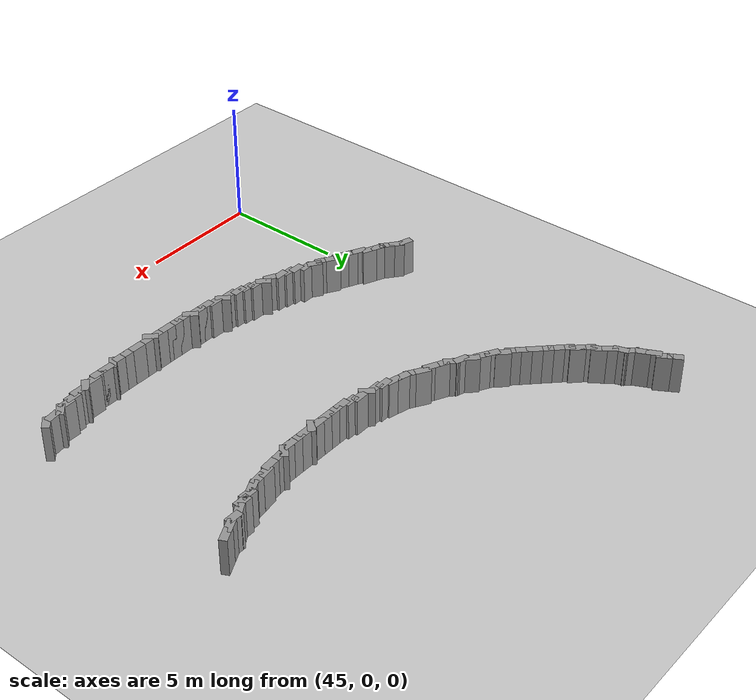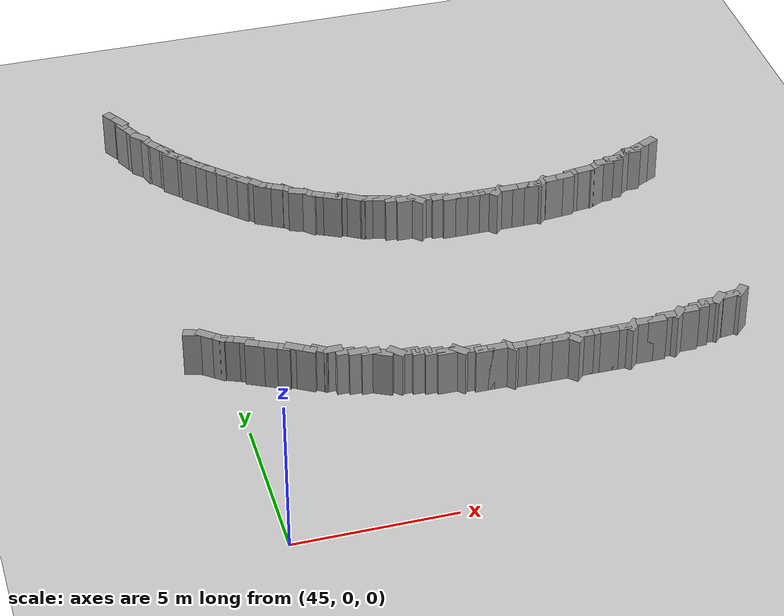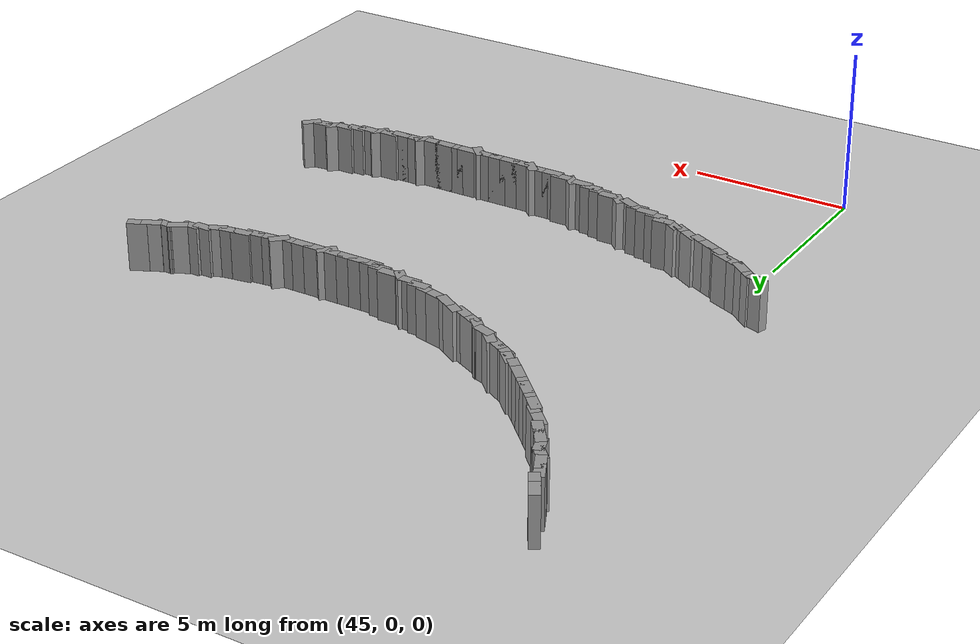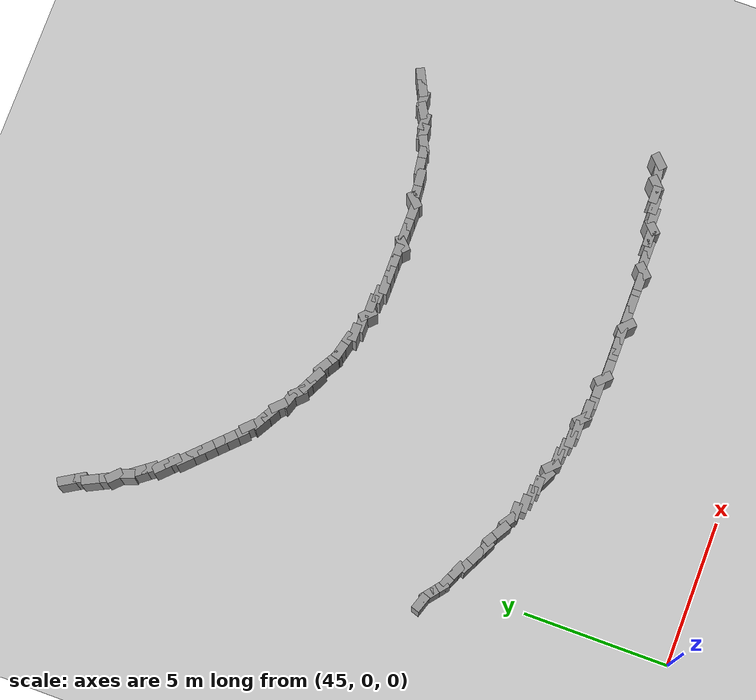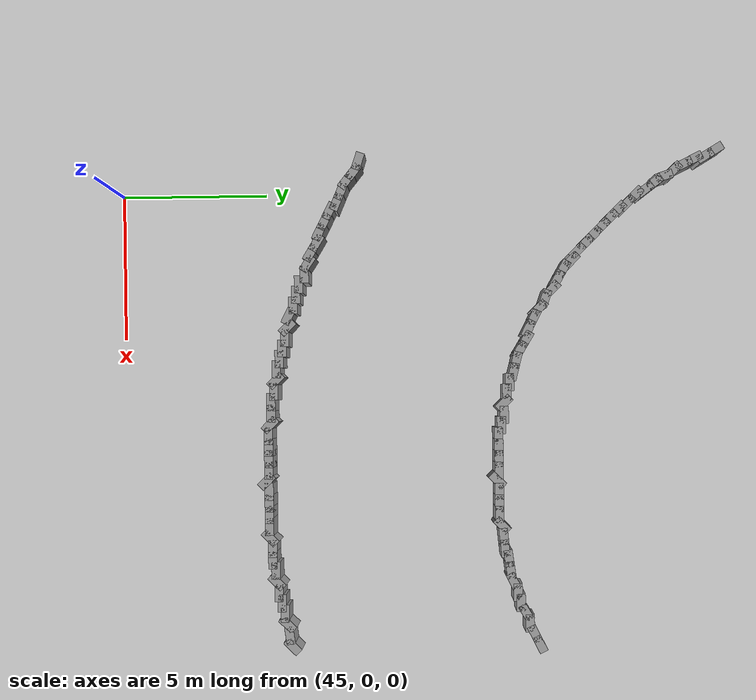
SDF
<sdf version="1.5">
 <world name="test_figure8">
  <include><uri>model://sun</uri></include>
  <include><uri>model://ground_plane</uri></include>
  <model name="curbL_149">
   <static>true</static>
   <pose>44.031 8.290 0.750 0 0 -0.322</pose>
   <link name="link">
    <collision name="collision"><geometry><box><size>0.600 0.300 1.500</size></box></geometry></collision>
    <visual name="visual">
     <geometry><box><size>0.600 0.300 1.500</size></box></geometry>
     <material><ambient>0.6 0.6 0.6 1</ambient><diffuse>0.6 0.6 0.6 1</diffuse></material>
    </visual>
   </link>
  </model>
  <model name="curbL_150">
   <static>true</static>
   <pose>44.391 8.127 0.750 0 0 -0.675</pose>
   <link name="link">
    <collision name="collision"><geometry><box><size>0.600 0.300 1.500</size></box></geometry></collision>
    <visual name="visual">
     <geometry><box><size>0.600 0.300 1.500</size></box></geometry>
     <material><ambient>0.6 0.6 0.6 1</ambient><diffuse>0.6 0.6 0.6 1</diffuse></material>
    </visual>
   </link>
  </model>
  <model name="curbL_151">
   <static>true</static>
   <pose>44.703 7.878 0.750 0 0 -0.675</pose>
   <link name="link">
    <collision name="collision"><geometry><box><size>0.600 0.300 1.500</size></box></geometry></collision>
    <visual name="visual">
     <geometry><box><size>0.600 0.300 1.500</size></box></geometry>
     <material><ambient>0.6 0.6 0.6 1</ambient><diffuse>0.6 0.6 0.6 1</diffuse></material>
    </visual>
   </link>
  </model>
  <model name="curbL_152">
   <static>true</static>
   <pose>45.053 7.691 0.750 0 0 -0.405</pose>
   <link name="link">
    <collision name="collision"><geometry><box><size>0.600 0.300 1.500</size></box></geometry></collision>
    <visual name="visual">
     <geometry><box><size>0.600 0.300 1.500</size></box></geometry>
     <material><ambient>0.6 0.6 0.6 1</ambient><diffuse>0.6 0.6 0.6 1</diffuse></material>
    </visual>
   </link>
  </model>
  <model name="curbL_153">
   <static>true</static>
   <pose>45.421 7.534 0.750 0 0 -0.405</pose>
   <link name="link">
    <collision name="collision"><geometry><box><size>0.600 0.300 1.500</size></box></geometry></collision>
    <visual name="visual">
     <geometry><box><size>0.600 0.300 1.500</size></box></geometry>
     <material><ambient>0.6 0.6 0.6 1</ambient><diffuse>0.6 0.6 0.6 1</diffuse></material>
    </visual>
   </link>
  </model>
  <model name="curbL_154">
   <static>true</static>
   <pose>45.728 7.286 0.750 0 0 -0.464</pose>
   <link name="link">
    <collision name="collision"><geometry><box><size>0.600 0.300 1.500</size></box></geometry></collision>
    <visual name="visual">
     <geometry><box><size>0.600 0.300 1.500</size></box></geometry>
     <material><ambient>0.6 0.6 0.6 1</ambient><diffuse>0.6 0.6 0.6 1</diffuse></material>
    </visual>
   </link>
  </model>
  <model name="curbL_155">
   <static>true</static>
   <pose>46.086 7.107 0.750 0 0 -0.464</pose>
   <link name="link">
    <collision name="collision"><geometry><box><size>0.600 0.300 1.500</size></box></geometry></collision>
    <visual name="visual">
     <geometry><box><size>0.600 0.300 1.500</size></box></geometry>
     <material><ambient>0.6 0.6 0.6 1</ambient><diffuse>0.6 0.6 0.6 1</diffuse></material>
    </visual>
   </link>
  </model>
  <model name="curbL_156">
   <static>true</static>
   <pose>46.444 6.928 0.750 0 0 -0.464</pose>
   <link name="link">
    <collision name="collision"><geometry><box><size>0.600 0.300 1.500</size></box></geometry></collision>
    <visual name="visual">
     <geometry><box><size>0.600 0.300 1.500</size></box></geometry>
     <material><ambient>0.6 0.6 0.6 1</ambient><diffuse>0.6 0.6 0.6 1</diffuse></material>
    </visual>
   </link>
  </model>
  <model name="curbL_157">
   <static>true</static>
   <pose>46.817 6.830 0.750 0 0 -0.540</pose>
   <link name="link">
    <collision name="collision"><geometry><box><size>0.600 0.300 1.500</size></box></geometry></collision>
    <visual name="visual">
     <geometry><box><size>0.600 0.300 1.500</size></box></geometry>
     <material><ambient>0.6 0.6 0.6 1</ambient><diffuse>0.6 0.6 0.6 1</diffuse></material>
    </visual>
   </link>
  </model>
  <model name="curbL_158">
   <static>true</static>
   <pose>47.160 6.624 0.750 0 0 -0.540</pose>
   <link name="link">
    <collision name="collision"><geometry><box><size>0.600 0.300 1.500</size></box></geometry></collision>
    <visual name="visual">
     <geometry><box><size>0.600 0.300 1.500</size></box></geometry>
     <material><ambient>0.6 0.6 0.6 1</ambient><diffuse>0.6 0.6 0.6 1</diffuse></material>
    </visual>
   </link>
  </model>
  <model name="curbL_159">
   <static>true</static>
   <pose>47.528 6.515 0.750 0 0 -0.588</pose>
   <link name="link">
    <collision name="collision"><geometry><box><size>0.600 0.300 1.500</size></box></geometry></collision>
    <visual name="visual">
     <geometry><box><size>0.600 0.300 1.500</size></box></geometry>
     <material><ambient>0.6 0.6 0.6 1</ambient><diffuse>0.6 0.6 0.6 1</diffuse></material>
    </visual>
   </link>
  </model>
  <model name="curbL_160">
   <static>true</static>
   <pose>47.893 6.400 0.750 0 0 0.000</pose>
   <link name="link">
    <collision name="collision"><geometry><box><size>0.600 0.300 1.500</size></box></geometry></collision>
    <visual name="visual">
     <geometry><box><size>0.600 0.300 1.500</size></box></geometry>
     <material><ambient>0.6 0.6 0.6 1</ambient><diffuse>0.6 0.6 0.6 1</diffuse></material>
    </visual>
   </link>
  </model>
  <model name="curbL_161">
   <static>true</static>
   <pose>48.233 6.200 0.750 0 0 0.000</pose>
   <link name="link">
    <collision name="collision"><geometry><box><size>0.600 0.300 1.500</size></box></geometry></collision>
    <visual name="visual">
     <geometry><box><size>0.600 0.300 1.500</size></box></geometry>
     <material><ambient>0.6 0.6 0.6 1</ambient><diffuse>0.6 0.6 0.6 1</diffuse></material>
    </visual>
   </link>
  </model>
  <model name="curbL_162">
   <static>true</static>
   <pose>48.591 6.100 0.750 0 0 0.000</pose>
   <link name="link">
    <collision name="collision"><geometry><box><size>0.600 0.300 1.500</size></box></geometry></collision>
    <visual name="visual">
     <geometry><box><size>0.600 0.300 1.500</size></box></geometry>
     <material><ambient>0.6 0.6 0.6 1</ambient><diffuse>0.6 0.6 0.6 1</diffuse></material>
    </visual>
   </link>
  </model>
  <model name="curbL_163">
   <static>true</static>
   <pose>48.950 6.000 0.750 0 0 0.000</pose>
   <link name="link">
    <collision name="collision"><geometry><box><size>0.600 0.300 1.500</size></box></geometry></collision>
    <visual name="visual">
     <geometry><box><size>0.600 0.300 1.500</size></box></geometry>
     <material><ambient>0.6 0.6 0.6 1</ambient><diffuse>0.6 0.6 0.6 1</diffuse></material>
    </visual>
   </link>
  </model>
  <model name="curbL_164">
   <static>true</static>
   <pose>49.313 5.844 0.750 0 0 -0.464</pose>
   <link name="link">
    <collision name="collision"><geometry><box><size>0.600 0.300 1.500</size></box></geometry></collision>
    <visual name="visual">
     <geometry><box><size>0.600 0.300 1.500</size></box></geometry>
     <material><ambient>0.6 0.6 0.6 1</ambient><diffuse>0.6 0.6 0.6 1</diffuse></material>
    </visual>
   </link>
  </model>
  <model name="curbL_165">
   <static>true</static>
   <pose>49.702 5.798 0.750 0 0 -0.785</pose>
   <link name="link">
    <collision name="collision"><geometry><box><size>0.600 0.300 1.500</size></box></geometry></collision>
    <visual name="visual">
     <geometry><box><size>0.600 0.300 1.500</size></box></geometry>
     <material><ambient>0.6 0.6 0.6 1</ambient><diffuse>0.6 0.6 0.6 1</diffuse></material>
    </visual>
   </link>
  </model>
  <model name="curbL_166">
   <static>true</static>
   <pose>50.061 5.700 0.750 0 0 0.000</pose>
   <link name="link">
    <collision name="collision"><geometry><box><size>0.600 0.300 1.500</size></box></geometry></collision>
    <visual name="visual">
     <geometry><box><size>0.600 0.300 1.500</size></box></geometry>
     <material><ambient>0.6 0.6 0.6 1</ambient><diffuse>0.6 0.6 0.6 1</diffuse></material>
    </visual>
   </link>
  </model>
  <model name="curbL_167">
   <static>true</static>
   <pose>50.420 5.600 0.750 0 0 0.000</pose>
   <link name="link">
    <collision name="collision"><geometry><box><size>0.600 0.300 1.500</size></box></geometry></collision>
    <visual name="visual">
     <geometry><box><size>0.600 0.300 1.500</size></box></geometry>
     <material><ambient>0.6 0.6 0.6 1</ambient><diffuse>0.6 0.6 0.6 1</diffuse></material>
    </visual>
   </link>
  </model>
  <model name="curbL_168">
   <static>true</static>
   <pose>50.778 5.500 0.750 0 0 0.000</pose>
   <link name="link">
    <collision name="collision"><geometry><box><size>0.600 0.300 1.500</size></box></geometry></collision>
    <visual name="visual">
     <geometry><box><size>0.600 0.300 1.500</size></box></geometry>
     <material><ambient>0.6 0.6 0.6 1</ambient><diffuse>0.6 0.6 0.6 1</diffuse></material>
    </visual>
   </link>
  </model>
  <model name="curbL_169">
   <static>true</static>
   <pose>51.137 5.400 0.750 0 0 0.000</pose>
   <link name="link">
    <collision name="collision"><geometry><box><size>0.600 0.300 1.500</size></box></geometry></collision>
    <visual name="visual">
     <geometry><box><size>0.600 0.300 1.500</size></box></geometry>
     <material><ambient>0.6 0.6 0.6 1</ambient><diffuse>0.6 0.6 0.6 1</diffuse></material>
    </visual>
   </link>
  </model>
  <model name="curbL_170">
   <static>true</static>
   <pose>51.526 5.374 0.750 0 0 -0.785</pose>
   <link name="link">
    <collision name="collision"><geometry><box><size>0.600 0.300 1.500</size></box></geometry></collision>
    <visual name="visual">
     <geometry><box><size>0.600 0.300 1.500</size></box></geometry>
     <material><ambient>0.6 0.6 0.6 1</ambient><diffuse>0.6 0.6 0.6 1</diffuse></material>
    </visual>
   </link>
  </model>
  <model name="curbL_171">
   <static>true</static>
   <pose>51.896 5.300 0.750 0 0 0.000</pose>
   <link name="link">
    <collision name="collision"><geometry><box><size>0.600 0.300 1.500</size></box></geometry></collision>
    <visual name="visual">
     <geometry><box><size>0.600 0.300 1.500</size></box></geometry>
     <material><ambient>0.6 0.6 0.6 1</ambient><diffuse>0.6 0.6 0.6 1</diffuse></material>
    </visual>
   </link>
  </model>
  <model name="curbL_172">
   <static>true</static>
   <pose>52.254 5.200 0.750 0 0 0.000</pose>
   <link name="link">
    <collision name="collision"><geometry><box><size>0.600 0.300 1.500</size></box></geometry></collision>
    <visual name="visual">
     <geometry><box><size>0.600 0.300 1.500</size></box></geometry>
     <material><ambient>0.6 0.6 0.6 1</ambient><diffuse>0.6 0.6 0.6 1</diffuse></material>
    </visual>
   </link>
  </model>
  <model name="curbL_173">
   <static>true</static>
   <pose>52.654 5.200 0.750 0 0 0.000</pose>
   <link name="link">
    <collision name="collision"><geometry><box><size>0.600 0.300 1.500</size></box></geometry></collision>
    <visual name="visual">
     <geometry><box><size>0.600 0.300 1.500</size></box></geometry>
     <material><ambient>0.6 0.6 0.6 1</ambient><diffuse>0.6 0.6 0.6 1</diffuse></material>
    </visual>
   </link>
  </model>
  <model name="curbL_174">
   <static>true</static>
   <pose>53.038 5.162 0.750 0 0 -0.785</pose>
   <link name="link">
    <collision name="collision"><geometry><box><size>0.600 0.300 1.500</size></box></geometry></collision>
    <visual name="visual">
     <geometry><box><size>0.600 0.300 1.500</size></box></geometry>
     <material><ambient>0.6 0.6 0.6 1</ambient><diffuse>0.6 0.6 0.6 1</diffuse></material>
    </visual>
   </link>
  </model>
  <model name="curbL_175">
   <static>true</static>
   <pose>53.413 5.100 0.750 0 0 0.000</pose>
   <link name="link">
    <collision name="collision"><geometry><box><size>0.600 0.300 1.500</size></box></geometry></collision>
    <visual name="visual">
     <geometry><box><size>0.600 0.300 1.500</size></box></geometry>
     <material><ambient>0.6 0.6 0.6 1</ambient><diffuse>0.6 0.6 0.6 1</diffuse></material>
    </visual>
   </link>
  </model>
  <model name="curbL_176">
   <static>true</static>
   <pose>53.813 5.100 0.750 0 0 0.000</pose>
   <link name="link">
    <collision name="collision"><geometry><box><size>0.600 0.300 1.500</size></box></geometry></collision>
    <visual name="visual">
     <geometry><box><size>0.600 0.300 1.500</size></box></geometry>
     <material><ambient>0.6 0.6 0.6 1</ambient><diffuse>0.6 0.6 0.6 1</diffuse></material>
    </visual>
   </link>
  </model>
  <model name="curbL_177">
   <static>true</static>
   <pose>54.213 5.100 0.750 0 0 0.000</pose>
   <link name="link">
    <collision name="collision"><geometry><box><size>0.600 0.300 1.500</size></box></geometry></collision>
    <visual name="visual">
     <geometry><box><size>0.600 0.300 1.500</size></box></geometry>
     <material><ambient>0.6 0.6 0.6 1</ambient><diffuse>0.6 0.6 0.6 1</diffuse></material>
    </visual>
   </link>
  </model>
  <model name="curbL_178">
   <static>true</static>
   <pose>54.613 5.100 0.750 0 0 0.000</pose>
   <link name="link">
    <collision name="collision"><geometry><box><size>0.600 0.300 1.500</size></box></geometry></collision>
    <visual name="visual">
     <geometry><box><size>0.600 0.300 1.500</size></box></geometry>
     <material><ambient>0.6 0.6 0.6 1</ambient><diffuse>0.6 0.6 0.6 1</diffuse></material>
    </visual>
   </link>
  </model>
  <model name="curbL_179">
   <static>true</static>
   <pose>54.980 5.020 0.750 0 0 -0.785</pose>
   <link name="link">
    <collision name="collision"><geometry><box><size>0.600 0.300 1.500</size></box></geometry></collision>
    <visual name="visual">
     <geometry><box><size>0.600 0.300 1.500</size></box></geometry>
     <material><ambient>0.6 0.6 0.6 1</ambient><diffuse>0.6 0.6 0.6 1</diffuse></material>
    </visual>
   </link>
  </model>
  <model name="curbL_180">
   <static>true</static>
   <pose>55.330 5.100 0.750 0 0 0.000</pose>
   <link name="link">
    <collision name="collision"><geometry><box><size>0.600 0.300 1.500</size></box></geometry></collision>
    <visual name="visual">
     <geometry><box><size>0.600 0.300 1.500</size></box></geometry>
     <material><ambient>0.6 0.6 0.6 1</ambient><diffuse>0.6 0.6 0.6 1</diffuse></material>
    </visual>
   </link>
  </model>
  <model name="curbL_181">
   <static>true</static>
   <pose>55.730 5.100 0.750 0 0 0.000</pose>
   <link name="link">
    <collision name="collision"><geometry><box><size>0.600 0.300 1.500</size></box></geometry></collision>
    <visual name="visual">
     <geometry><box><size>0.600 0.300 1.500</size></box></geometry>
     <material><ambient>0.6 0.6 0.6 1</ambient><diffuse>0.6 0.6 0.6 1</diffuse></material>
    </visual>
   </link>
  </model>
  <model name="curbL_182">
   <static>true</static>
   <pose>56.130 5.100 0.750 0 0 0.000</pose>
   <link name="link">
    <collision name="collision"><geometry><box><size>0.600 0.300 1.500</size></box></geometry></collision>
    <visual name="visual">
     <geometry><box><size>0.600 0.300 1.500</size></box></geometry>
     <material><ambient>0.6 0.6 0.6 1</ambient><diffuse>0.6 0.6 0.6 1</diffuse></material>
    </visual>
   </link>
  </model>
  <model name="curbL_183">
   <static>true</static>
   <pose>56.530 5.100 0.750 0 0 0.000</pose>
   <link name="link">
    <collision name="collision"><geometry><box><size>0.600 0.300 1.500</size></box></geometry></collision>
    <visual name="visual">
     <geometry><box><size>0.600 0.300 1.500</size></box></geometry>
     <material><ambient>0.6 0.6 0.6 1</ambient><diffuse>0.6 0.6 0.6 1</diffuse></material>
    </visual>
   </link>
  </model>
  <model name="curbL_184">
   <static>true</static>
   <pose>56.921 5.121 0.750 0 0 0.785</pose>
   <link name="link">
    <collision name="collision"><geometry><box><size>0.600 0.300 1.500</size></box></geometry></collision>
    <visual name="visual">
     <geometry><box><size>0.600 0.300 1.500</size></box></geometry>
     <material><ambient>0.6 0.6 0.6 1</ambient><diffuse>0.6 0.6 0.6 1</diffuse></material>
    </visual>
   </link>
  </model>
  <model name="curbL_185">
   <static>true</static>
   <pose>57.288 5.200 0.750 0 0 0.000</pose>
   <link name="link">
    <collision name="collision"><geometry><box><size>0.600 0.300 1.500</size></box></geometry></collision>
    <visual name="visual">
     <geometry><box><size>0.600 0.300 1.500</size></box></geometry>
     <material><ambient>0.6 0.6 0.6 1</ambient><diffuse>0.6 0.6 0.6 1</diffuse></material>
    </visual>
   </link>
  </model>
  <model name="curbL_186">
   <static>true</static>
   <pose>57.688 5.200 0.750 0 0 0.000</pose>
   <link name="link">
    <collision name="collision"><geometry><box><size>0.600 0.300 1.500</size></box></geometry></collision>
    <visual name="visual">
     <geometry><box><size>0.600 0.300 1.500</size></box></geometry>
     <material><ambient>0.6 0.6 0.6 1</ambient><diffuse>0.6 0.6 0.6 1</diffuse></material>
    </visual>
   </link>
  </model>
  <model name="curbL_187">
   <static>true</static>
   <pose>58.047 5.300 0.750 0 0 0.000</pose>
   <link name="link">
    <collision name="collision"><geometry><box><size>0.600 0.300 1.500</size></box></geometry></collision>
    <visual name="visual">
     <geometry><box><size>0.600 0.300 1.500</size></box></geometry>
     <material><ambient>0.6 0.6 0.6 1</ambient><diffuse>0.6 0.6 0.6 1</diffuse></material>
    </visual>
   </link>
  </model>
  <model name="curbL_188">
   <static>true</static>
   <pose>58.433 5.333 0.750 0 0 0.785</pose>
   <link name="link">
    <collision name="collision"><geometry><box><size>0.600 0.300 1.500</size></box></geometry></collision>
    <visual name="visual">
     <geometry><box><size>0.600 0.300 1.500</size></box></geometry>
     <material><ambient>0.6 0.6 0.6 1</ambient><diffuse>0.6 0.6 0.6 1</diffuse></material>
    </visual>
   </link>
  </model>
  <model name="curbL_189">
   <static>true</static>
   <pose>58.806 5.400 0.750 0 0 0.000</pose>
   <link name="link">
    <collision name="collision"><geometry><box><size>0.600 0.300 1.500</size></box></geometry></collision>
    <visual name="visual">
     <geometry><box><size>0.600 0.300 1.500</size></box></geometry>
     <material><ambient>0.6 0.6 0.6 1</ambient><diffuse>0.6 0.6 0.6 1</diffuse></material>
    </visual>
   </link>
  </model>
  <model name="curbL_190">
   <static>true</static>
   <pose>59.164 5.500 0.750 0 0 0.000</pose>
   <link name="link">
    <collision name="collision"><geometry><box><size>0.600 0.300 1.500</size></box></geometry></collision>
    <visual name="visual">
     <geometry><box><size>0.600 0.300 1.500</size></box></geometry>
     <material><ambient>0.6 0.6 0.6 1</ambient><diffuse>0.6 0.6 0.6 1</diffuse></material>
    </visual>
   </link>
  </model>
  <model name="curbL_191">
   <static>true</static>
   <pose>59.523 5.600 0.750 0 0 0.000</pose>
   <link name="link">
    <collision name="collision"><geometry><box><size>0.600 0.300 1.500</size></box></geometry></collision>
    <visual name="visual">
     <geometry><box><size>0.600 0.300 1.500</size></box></geometry>
     <material><ambient>0.6 0.6 0.6 1</ambient><diffuse>0.6 0.6 0.6 1</diffuse></material>
    </visual>
   </link>
  </model>
  <model name="curbL_192">
   <static>true</static>
   <pose>59.887 5.687 0.750 0 0 0.785</pose>
   <link name="link">
    <collision name="collision"><geometry><box><size>0.600 0.300 1.500</size></box></geometry></collision>
    <visual name="visual">
     <geometry><box><size>0.600 0.300 1.500</size></box></geometry>
     <material><ambient>0.6 0.6 0.6 1</ambient><diffuse>0.6 0.6 0.6 1</diffuse></material>
    </visual>
   </link>
  </model>
  <model name="curbL_193">
   <static>true</static>
   <pose>60.278 5.754 0.750 0 0 0.142</pose>
   <link name="link">
    <collision name="collision"><geometry><box><size>0.600 0.300 1.500</size></box></geometry></collision>
    <visual name="visual">
     <geometry><box><size>0.600 0.300 1.500</size></box></geometry>
     <material><ambient>0.6 0.6 0.6 1</ambient><diffuse>0.6 0.6 0.6 1</diffuse></material>
    </visual>
   </link>
  </model>
  <model name="curbL_194">
   <static>true</static>
   <pose>60.652 5.852 0.750 0 0 0.785</pose>
   <link name="link">
    <collision name="collision"><geometry><box><size>0.600 0.300 1.500</size></box></geometry></collision>
    <visual name="visual">
     <geometry><box><size>0.600 0.300 1.500</size></box></geometry>
     <material><ambient>0.6 0.6 0.6 1</ambient><diffuse>0.6 0.6 0.6 1</diffuse></material>
    </visual>
   </link>
  </model>
  <model name="curbR_82">
   <static>true</static>
   <pose>60.681 14.340 0.750 0 0 -2.678</pose>
   <link name="link">
    <collision name="collision"><geometry><box><size>0.600 0.300 1.500</size></box></geometry></collision>
    <visual name="visual">
     <geometry><box><size>0.600 0.300 1.500</size></box></geometry>
     <material><ambient>0.6 0.6 0.6 1</ambient><diffuse>0.6 0.6 0.6 1</diffuse></material>
    </visual>
   </link>
  </model>
  <model name="curbR_83">
   <static>true</static>
   <pose>60.323 14.161 0.750 0 0 -2.678</pose>
   <link name="link">
    <collision name="collision"><geometry><box><size>0.600 0.300 1.500</size></box></geometry></collision>
    <visual name="visual">
     <geometry><box><size>0.600 0.300 1.500</size></box></geometry>
     <material><ambient>0.6 0.6 0.6 1</ambient><diffuse>0.6 0.6 0.6 1</diffuse></material>
    </visual>
   </link>
  </model>
  <model name="curbR_84">
   <static>true</static>
   <pose>59.961 14.000 0.750 0 0 3.142</pose>
   <link name="link">
    <collision name="collision"><geometry><box><size>0.600 0.300 1.500</size></box></geometry></collision>
    <visual name="visual">
     <geometry><box><size>0.600 0.300 1.500</size></box></geometry>
     <material><ambient>0.6 0.6 0.6 1</ambient><diffuse>0.6 0.6 0.6 1</diffuse></material>
    </visual>
   </link>
  </model>
  <model name="curbR_85">
   <static>true</static>
   <pose>59.595 13.877 0.750 0 0 -2.601</pose>
   <link name="link">
    <collision name="collision"><geometry><box><size>0.600 0.300 1.500</size></box></geometry></collision>
    <visual name="visual">
     <geometry><box><size>0.600 0.300 1.500</size></box></geometry>
     <material><ambient>0.6 0.6 0.6 1</ambient><diffuse>0.6 0.6 0.6 1</diffuse></material>
    </visual>
   </link>
  </model>
  <model name="curbR_86">
   <static>true</static>
   <pose>59.244 13.700 0.750 0 0 3.142</pose>
   <link name="link">
    <collision name="collision"><geometry><box><size>0.600 0.300 1.500</size></box></geometry></collision>
    <visual name="visual">
     <geometry><box><size>0.600 0.300 1.500</size></box></geometry>
     <material><ambient>0.6 0.6 0.6 1</ambient><diffuse>0.6 0.6 0.6 1</diffuse></material>
    </visual>
   </link>
  </model>
  <model name="curbR_87">
   <static>true</static>
   <pose>58.885 13.600 0.750 0 0 3.142</pose>
   <link name="link">
    <collision name="collision"><geometry><box><size>0.600 0.300 1.500</size></box></geometry></collision>
    <visual name="visual">
     <geometry><box><size>0.600 0.300 1.500</size></box></geometry>
     <material><ambient>0.6 0.6 0.6 1</ambient><diffuse>0.6 0.6 0.6 1</diffuse></material>
    </visual>
   </link>
  </model>
  <model name="curbR_88">
   <static>true</static>
   <pose>58.519 13.459 0.750 0 0 -2.678</pose>
   <link name="link">
    <collision name="collision"><geometry><box><size>0.600 0.300 1.500</size></box></geometry></collision>
    <visual name="visual">
     <geometry><box><size>0.600 0.300 1.500</size></box></geometry>
     <material><ambient>0.6 0.6 0.6 1</ambient><diffuse>0.6 0.6 0.6 1</diffuse></material>
    </visual>
   </link>
  </model>
  <model name="curbR_89">
   <static>true</static>
   <pose>58.135 13.362 0.750 0 0 -3.000</pose>
   <link name="link">
    <collision name="collision"><geometry><box><size>0.600 0.300 1.500</size></box></geometry></collision>
    <visual name="visual">
     <geometry><box><size>0.600 0.300 1.500</size></box></geometry>
     <material><ambient>0.6 0.6 0.6 1</ambient><diffuse>0.6 0.6 0.6 1</diffuse></material>
    </visual>
   </link>
  </model>
  <model name="curbR_90">
   <static>true</static>
   <pose>57.739 13.306 0.750 0 0 -3.000</pose>
   <link name="link">
    <collision name="collision"><geometry><box><size>0.600 0.300 1.500</size></box></geometry></collision>
    <visual name="visual">
     <geometry><box><size>0.600 0.300 1.500</size></box></geometry>
     <material><ambient>0.6 0.6 0.6 1</ambient><diffuse>0.6 0.6 0.6 1</diffuse></material>
    </visual>
   </link>
  </model>
  <model name="curbR_91">
   <static>true</static>
   <pose>57.382 13.178 0.750 0 0 -3.042</pose>
   <link name="link">
    <collision name="collision"><geometry><box><size>0.600 0.300 1.500</size></box></geometry></collision>
    <visual name="visual">
     <geometry><box><size>0.600 0.300 1.500</size></box></geometry>
     <material><ambient>0.6 0.6 0.6 1</ambient><diffuse>0.6 0.6 0.6 1</diffuse></material>
    </visual>
   </link>
  </model>
  <model name="curbR_92">
   <static>true</static>
   <pose>56.984 13.138 0.750 0 0 -3.042</pose>
   <link name="link">
    <collision name="collision"><geometry><box><size>0.600 0.300 1.500</size></box></geometry></collision>
    <visual name="visual">
     <geometry><box><size>0.600 0.300 1.500</size></box></geometry>
     <material><ambient>0.6 0.6 0.6 1</ambient><diffuse>0.6 0.6 0.6 1</diffuse></material>
    </visual>
   </link>
  </model>
  <model name="curbR_93">
   <static>true</static>
   <pose>56.590 13.090 0.750 0 0 -2.356</pose>
   <link name="link">
    <collision name="collision"><geometry><box><size>0.600 0.300 1.500</size></box></geometry></collision>
    <visual name="visual">
     <geometry><box><size>0.600 0.300 1.500</size></box></geometry>
     <material><ambient>0.6 0.6 0.6 1</ambient><diffuse>0.6 0.6 0.6 1</diffuse></material>
    </visual>
   </link>
  </model>
  <model name="curbR_94">
   <static>true</static>
   <pose>56.228 13.000 0.750 0 0 3.142</pose>
   <link name="link">
    <collision name="collision"><geometry><box><size>0.600 0.300 1.500</size></box></geometry></collision>
    <visual name="visual">
     <geometry><box><size>0.600 0.300 1.500</size></box></geometry>
     <material><ambient>0.6 0.6 0.6 1</ambient><diffuse>0.6 0.6 0.6 1</diffuse></material>
    </visual>
   </link>
  </model>
  <model name="curbR_95">
   <static>true</static>
   <pose>55.828 13.000 0.750 0 0 3.142</pose>
   <link name="link">
    <collision name="collision"><geometry><box><size>0.600 0.300 1.500</size></box></geometry></collision>
    <visual name="visual">
     <geometry><box><size>0.600 0.300 1.500</size></box></geometry>
     <material><ambient>0.6 0.6 0.6 1</ambient><diffuse>0.6 0.6 0.6 1</diffuse></material>
    </visual>
   </link>
  </model>
  <model name="curbR_96">
   <static>true</static>
   <pose>55.428 13.000 0.750 0 0 3.142</pose>
   <link name="link">
    <collision name="collision"><geometry><box><size>0.600 0.300 1.500</size></box></geometry></collision>
    <visual name="visual">
     <geometry><box><size>0.600 0.300 1.500</size></box></geometry>
     <material><ambient>0.6 0.6 0.6 1</ambient><diffuse>0.6 0.6 0.6 1</diffuse></material>
    </visual>
   </link>
  </model>
  <model name="curbR_97">
   <static>true</static>
   <pose>55.049 12.949 0.750 0 0 -2.356</pose>
   <link name="link">
    <collision name="collision"><geometry><box><size>0.600 0.300 1.500</size></box></geometry></collision>
    <visual name="visual">
     <geometry><box><size>0.600 0.300 1.500</size></box></geometry>
     <material><ambient>0.6 0.6 0.6 1</ambient><diffuse>0.6 0.6 0.6 1</diffuse></material>
    </visual>
   </link>
  </model>
  <model name="curbR_98">
   <static>true</static>
   <pose>54.710 13.000 0.750 0 0 3.142</pose>
   <link name="link">
    <collision name="collision"><geometry><box><size>0.600 0.300 1.500</size></box></geometry></collision>
    <visual name="visual">
     <geometry><box><size>0.600 0.300 1.500</size></box></geometry>
     <material><ambient>0.6 0.6 0.6 1</ambient><diffuse>0.6 0.6 0.6 1</diffuse></material>
    </visual>
   </link>
  </model>
  <model name="curbR_99">
   <static>true</static>
   <pose>54.310 13.000 0.750 0 0 3.142</pose>
   <link name="link">
    <collision name="collision"><geometry><box><size>0.600 0.300 1.500</size></box></geometry></collision>
    <visual name="visual">
     <geometry><box><size>0.600 0.300 1.500</size></box></geometry>
     <material><ambient>0.6 0.6 0.6 1</ambient><diffuse>0.6 0.6 0.6 1</diffuse></material>
    </visual>
   </link>
  </model>
  <model name="curbR_100">
   <static>true</static>
   <pose>53.910 13.000 0.750 0 0 3.142</pose>
   <link name="link">
    <collision name="collision"><geometry><box><size>0.600 0.300 1.500</size></box></geometry></collision>
    <visual name="visual">
     <geometry><box><size>0.600 0.300 1.500</size></box></geometry>
     <material><ambient>0.6 0.6 0.6 1</ambient><diffuse>0.6 0.6 0.6 1</diffuse></material>
    </visual>
   </link>
  </model>
  <model name="curbR_101">
   <static>true</static>
   <pose>53.510 13.000 0.750 0 0 3.142</pose>
   <link name="link">
    <collision name="collision"><geometry><box><size>0.600 0.300 1.500</size></box></geometry></collision>
    <visual name="visual">
     <geometry><box><size>0.600 0.300 1.500</size></box></geometry>
     <material><ambient>0.6 0.6 0.6 1</ambient><diffuse>0.6 0.6 0.6 1</diffuse></material>
    </visual>
   </link>
  </model>
  <model name="curbR_102">
   <static>true</static>
   <pose>53.152 13.100 0.750 0 0 3.142</pose>
   <link name="link">
    <collision name="collision"><geometry><box><size>0.600 0.300 1.500</size></box></geometry></collision>
    <visual name="visual">
     <geometry><box><size>0.600 0.300 1.500</size></box></geometry>
     <material><ambient>0.6 0.6 0.6 1</ambient><diffuse>0.6 0.6 0.6 1</diffuse></material>
    </visual>
   </link>
  </model>
  <model name="curbR_103">
   <static>true</static>
   <pose>52.793 13.200 0.750 0 0 3.142</pose>
   <link name="link">
    <collision name="collision"><geometry><box><size>0.600 0.300 1.500</size></box></geometry></collision>
    <visual name="visual">
     <geometry><box><size>0.600 0.300 1.500</size></box></geometry>
     <material><ambient>0.6 0.6 0.6 1</ambient><diffuse>0.6 0.6 0.6 1</diffuse></material>
    </visual>
   </link>
  </model>
  <model name="curbR_104">
   <static>true</static>
   <pose>52.395 13.205 0.750 0 0 2.356</pose>
   <link name="link">
    <collision name="collision"><geometry><box><size>0.600 0.300 1.500</size></box></geometry></collision>
    <visual name="visual">
     <geometry><box><size>0.600 0.300 1.500</size></box></geometry>
     <material><ambient>0.6 0.6 0.6 1</ambient><diffuse>0.6 0.6 0.6 1</diffuse></material>
    </visual>
   </link>
  </model>
  <model name="curbR_105">
   <static>true</static>
   <pose>52.035 13.300 0.750 0 0 3.142</pose>
   <link name="link">
    <collision name="collision"><geometry><box><size>0.600 0.300 1.500</size></box></geometry></collision>
    <visual name="visual">
     <geometry><box><size>0.600 0.300 1.500</size></box></geometry>
     <material><ambient>0.6 0.6 0.6 1</ambient><diffuse>0.6 0.6 0.6 1</diffuse></material>
    </visual>
   </link>
  </model>
  <model name="curbR_106">
   <static>true</static>
   <pose>51.676 13.400 0.750 0 0 3.142</pose>
   <link name="link">
    <collision name="collision"><geometry><box><size>0.600 0.300 1.500</size></box></geometry></collision>
    <visual name="visual">
     <geometry><box><size>0.600 0.300 1.500</size></box></geometry>
     <material><ambient>0.6 0.6 0.6 1</ambient><diffuse>0.6 0.6 0.6 1</diffuse></material>
    </visual>
   </link>
  </model>
  <model name="curbR_107">
   <static>true</static>
   <pose>51.323 13.544 0.750 0 0 2.897</pose>
   <link name="link">
    <collision name="collision"><geometry><box><size>0.600 0.300 1.500</size></box></geometry></collision>
    <visual name="visual">
     <geometry><box><size>0.600 0.300 1.500</size></box></geometry>
     <material><ambient>0.6 0.6 0.6 1</ambient><diffuse>0.6 0.6 0.6 1</diffuse></material>
    </visual>
   </link>
  </model>
  <model name="curbR_108">
   <static>true</static>
   <pose>50.935 13.641 0.750 0 0 2.897</pose>
   <link name="link">
    <collision name="collision"><geometry><box><size>0.600 0.300 1.500</size></box></geometry></collision>
    <visual name="visual">
     <geometry><box><size>0.600 0.300 1.500</size></box></geometry>
     <material><ambient>0.6 0.6 0.6 1</ambient><diffuse>0.6 0.6 0.6 1</diffuse></material>
    </visual>
   </link>
  </model>
  <model name="curbR_109">
   <static>true</static>
   <pose>50.565 13.781 0.750 0 0 2.601</pose>
   <link name="link">
    <collision name="collision"><geometry><box><size>0.600 0.300 1.500</size></box></geometry></collision>
    <visual name="visual">
     <geometry><box><size>0.600 0.300 1.500</size></box></geometry>
     <material><ambient>0.6 0.6 0.6 1</ambient><diffuse>0.6 0.6 0.6 1</diffuse></material>
    </visual>
   </link>
  </model>
  <model name="curbR_110">
   <static>true</static>
   <pose>50.222 13.987 0.750 0 0 2.601</pose>
   <link name="link">
    <collision name="collision"><geometry><box><size>0.600 0.300 1.500</size></box></geometry></collision>
    <visual name="visual">
     <geometry><box><size>0.600 0.300 1.500</size></box></geometry>
     <material><ambient>0.6 0.6 0.6 1</ambient><diffuse>0.6 0.6 0.6 1</diffuse></material>
    </visual>
   </link>
  </model>
  <model name="curbR_111">
   <static>true</static>
   <pose>49.844 14.078 0.750 0 0 2.678</pose>
   <link name="link">
    <collision name="collision"><geometry><box><size>0.600 0.300 1.500</size></box></geometry></collision>
    <visual name="visual">
     <geometry><box><size>0.600 0.300 1.500</size></box></geometry>
     <material><ambient>0.6 0.6 0.6 1</ambient><diffuse>0.6 0.6 0.6 1</diffuse></material>
    </visual>
   </link>
  </model>
  <model name="curbR_112">
   <static>true</static>
   <pose>49.486 14.257 0.750 0 0 2.678</pose>
   <link name="link">
    <collision name="collision"><geometry><box><size>0.600 0.300 1.500</size></box></geometry></collision>
    <visual name="visual">
     <geometry><box><size>0.600 0.300 1.500</size></box></geometry>
     <material><ambient>0.6 0.6 0.6 1</ambient><diffuse>0.6 0.6 0.6 1</diffuse></material>
    </visual>
   </link>
  </model>
  <model name="curbR_113">
   <static>true</static>
   <pose>49.143 14.457 0.750 0 0 2.356</pose>
   <link name="link">
    <collision name="collision"><geometry><box><size>0.600 0.300 1.500</size></box></geometry></collision>
    <visual name="visual">
     <geometry><box><size>0.600 0.300 1.500</size></box></geometry>
     <material><ambient>0.6 0.6 0.6 1</ambient><diffuse>0.6 0.6 0.6 1</diffuse></material>
    </visual>
   </link>
  </model>
  <model name="curbR_114">
   <static>true</static>
   <pose>48.813 14.662 0.750 0 0 2.820</pose>
   <link name="link">
    <collision name="collision"><geometry><box><size>0.600 0.300 1.500</size></box></geometry></collision>
    <visual name="visual">
     <geometry><box><size>0.600 0.300 1.500</size></box></geometry>
     <material><ambient>0.6 0.6 0.6 1</ambient><diffuse>0.6 0.6 0.6 1</diffuse></material>
    </visual>
   </link>
  </model>
  <model name="curbR_115">
   <static>true</static>
   <pose>48.501 14.899 0.750 0 0 2.356</pose>
   <link name="link">
    <collision name="collision"><geometry><box><size>0.600 0.300 1.500</size></box></geometry></collision>
    <visual name="visual">
     <geometry><box><size>0.600 0.300 1.500</size></box></geometry>
     <material><ambient>0.6 0.6 0.6 1</ambient><diffuse>0.6 0.6 0.6 1</diffuse></material>
    </visual>
   </link>
  </model>
  <model name="curbR_116">
   <static>true</static>
   <pose>48.154 15.098 0.750 0 0 2.622</pose>
   <link name="link">
    <collision name="collision"><geometry><box><size>0.600 0.300 1.500</size></box></geometry></collision>
    <visual name="visual">
     <geometry><box><size>0.600 0.300 1.500</size></box></geometry>
     <material><ambient>0.6 0.6 0.6 1</ambient><diffuse>0.6 0.6 0.6 1</diffuse></material>
    </visual>
   </link>
  </model>
  <model name="curbR_117">
   <static>true</static>
   <pose>47.807 15.296 0.750 0 0 2.622</pose>
   <link name="link">
    <collision name="collision"><geometry><box><size>0.600 0.300 1.500</size></box></geometry></collision>
    <visual name="visual">
     <geometry><box><size>0.600 0.300 1.500</size></box></geometry>
     <material><ambient>0.6 0.6 0.6 1</ambient><diffuse>0.6 0.6 0.6 1</diffuse></material>
    </visual>
   </link>
  </model>
  <model name="curbR_118">
   <static>true</static>
   <pose>47.523 15.577 0.750 0 0 2.356</pose>
   <link name="link">
    <collision name="collision"><geometry><box><size>0.600 0.300 1.500</size></box></geometry></collision>
    <visual name="visual">
     <geometry><box><size>0.600 0.300 1.500</size></box></geometry>
     <material><ambient>0.6 0.6 0.6 1</ambient><diffuse>0.6 0.6 0.6 1</diffuse></material>
    </visual>
   </link>
  </model>
  <model name="curbR_119">
   <static>true</static>
   <pose>47.211 15.789 0.750 0 0 2.356</pose>
   <link name="link">
    <collision name="collision"><geometry><box><size>0.600 0.300 1.500</size></box></geometry></collision>
    <visual name="visual">
     <geometry><box><size>0.600 0.300 1.500</size></box></geometry>
     <material><ambient>0.6 0.6 0.6 1</ambient><diffuse>0.6 0.6 0.6 1</diffuse></material>
    </visual>
   </link>
  </model>
  <model name="curbR_120">
   <static>true</static>
   <pose>46.928 16.072 0.750 0 0 2.356</pose>
   <link name="link">
    <collision name="collision"><geometry><box><size>0.600 0.300 1.500</size></box></geometry></collision>
    <visual name="visual">
     <geometry><box><size>0.600 0.300 1.500</size></box></geometry>
     <material><ambient>0.6 0.6 0.6 1</ambient><diffuse>0.6 0.6 0.6 1</diffuse></material>
    </visual>
   </link>
  </model>
  <model name="curbR_121">
   <static>true</static>
   <pose>46.645 16.355 0.750 0 0 2.356</pose>
   <link name="link">
    <collision name="collision"><geometry><box><size>0.600 0.300 1.500</size></box></geometry></collision>
    <visual name="visual">
     <geometry><box><size>0.600 0.300 1.500</size></box></geometry>
     <material><ambient>0.6 0.6 0.6 1</ambient><diffuse>0.6 0.6 0.6 1</diffuse></material>
    </visual>
   </link>
  </model>
  <model name="curbR_122">
   <static>true</static>
   <pose>46.362 16.638 0.750 0 0 2.356</pose>
   <link name="link">
    <collision name="collision"><geometry><box><size>0.600 0.300 1.500</size></box></geometry></collision>
    <visual name="visual">
     <geometry><box><size>0.600 0.300 1.500</size></box></geometry>
     <material><ambient>0.6 0.6 0.6 1</ambient><diffuse>0.6 0.6 0.6 1</diffuse></material>
    </visual>
   </link>
  </model>
  <model name="curbR_123">
   <static>true</static>
   <pose>46.079 16.921 0.750 0 0 2.356</pose>
   <link name="link">
    <collision name="collision"><geometry><box><size>0.600 0.300 1.500</size></box></geometry></collision>
    <visual name="visual">
     <geometry><box><size>0.600 0.300 1.500</size></box></geometry>
     <material><ambient>0.6 0.6 0.6 1</ambient><diffuse>0.6 0.6 0.6 1</diffuse></material>
    </visual>
   </link>
  </model>
  <model name="curbR_124">
   <static>true</static>
   <pose>45.796 17.204 0.750 0 0 2.356</pose>
   <link name="link">
    <collision name="collision"><geometry><box><size>0.600 0.300 1.500</size></box></geometry></collision>
    <visual name="visual">
     <geometry><box><size>0.600 0.300 1.500</size></box></geometry>
     <material><ambient>0.6 0.6 0.6 1</ambient><diffuse>0.6 0.6 0.6 1</diffuse></material>
    </visual>
   </link>
  </model>
  <model name="curbR_125">
   <static>true</static>
   <pose>45.584 17.516 0.750 0 0 2.356</pose>
   <link name="link">
    <collision name="collision"><geometry><box><size>0.600 0.300 1.500</size></box></geometry></collision>
    <visual name="visual">
     <geometry><box><size>0.600 0.300 1.500</size></box></geometry>
     <material><ambient>0.6 0.6 0.6 1</ambient><diffuse>0.6 0.6 0.6 1</diffuse></material>
    </visual>
   </link>
  </model>
  <model name="curbR_126">
   <static>true</static>
   <pose>45.301 17.799 0.750 0 0 2.356</pose>
   <link name="link">
    <collision name="collision"><geometry><box><size>0.600 0.300 1.500</size></box></geometry></collision>
    <visual name="visual">
     <geometry><box><size>0.600 0.300 1.500</size></box></geometry>
     <material><ambient>0.6 0.6 0.6 1</ambient><diffuse>0.6 0.6 0.6 1</diffuse></material>
    </visual>
   </link>
  </model>
  <model name="curbR_127">
   <static>true</static>
   <pose>45.121 18.138 0.750 0 0 2.214</pose>
   <link name="link">
    <collision name="collision"><geometry><box><size>0.600 0.300 1.500</size></box></geometry></collision>
    <visual name="visual">
     <geometry><box><size>0.600 0.300 1.500</size></box></geometry>
     <material><ambient>0.6 0.6 0.6 1</ambient><diffuse>0.6 0.6 0.6 1</diffuse></material>
    </visual>
   </link>
  </model>
  <model name="curbR_128">
   <static>true</static>
   <pose>44.881 18.458 0.750 0 0 2.214</pose>
   <link name="link">
    <collision name="collision"><geometry><box><size>0.600 0.300 1.500</size></box></geometry></collision>
    <visual name="visual">
     <geometry><box><size>0.600 0.300 1.500</size></box></geometry>
     <material><ambient>0.6 0.6 0.6 1</ambient><diffuse>0.6 0.6 0.6 1</diffuse></material>
    </visual>
   </link>
  </model>
  <model name="curbR_129">
   <static>true</static>
   <pose>44.669 18.793 0.750 0 0 1.893</pose>
   <link name="link">
    <collision name="collision"><geometry><box><size>0.600 0.300 1.500</size></box></geometry></collision>
    <visual name="visual">
     <geometry><box><size>0.600 0.300 1.500</size></box></geometry>
     <material><ambient>0.6 0.6 0.6 1</ambient><diffuse>0.6 0.6 0.6 1</diffuse></material>
    </visual>
   </link>
  </model>
  <model name="curbR_130">
   <static>true</static>
   <pose>44.471 19.129 0.750 0 0 2.356</pose>
   <link name="link">
    <collision name="collision"><geometry><box><size>0.600 0.300 1.500</size></box></geometry></collision>
    <visual name="visual">
     <geometry><box><size>0.600 0.300 1.500</size></box></geometry>
     <material><ambient>0.6 0.6 0.6 1</ambient><diffuse>0.6 0.6 0.6 1</diffuse></material>
    </visual>
   </link>
  </model>
  <model name="curbR_131">
   <static>true</static>
   <pose>44.266 19.467 0.750 0 0 2.034</pose>
   <link name="link">
    <collision name="collision"><geometry><box><size>0.600 0.300 1.500</size></box></geometry></collision>
    <visual name="visual">
     <geometry><box><size>0.600 0.300 1.500</size></box></geometry>
     <material><ambient>0.6 0.6 0.6 1</ambient><diffuse>0.6 0.6 0.6 1</diffuse></material>
    </visual>
   </link>
  </model>
  <model name="curbR_132">
   <static>true</static>
   <pose>44.087 19.825 0.750 0 0 2.034</pose>
   <link name="link">
    <collision name="collision"><geometry><box><size>0.600 0.300 1.500</size></box></geometry></collision>
    <visual name="visual">
     <geometry><box><size>0.600 0.300 1.500</size></box></geometry>
     <material><ambient>0.6 0.6 0.6 1</ambient><diffuse>0.6 0.6 0.6 1</diffuse></material>
    </visual>
   </link>
  </model>
  <model name="curbR_133">
   <static>true</static>
   <pose>43.998 20.204 0.750 0 0 2.111</pose>
   <link name="link">
    <collision name="collision"><geometry><box><size>0.600 0.300 1.500</size></box></geometry></collision>
    <visual name="visual">
     <geometry><box><size>0.600 0.300 1.500</size></box></geometry>
     <material><ambient>0.6 0.6 0.6 1</ambient><diffuse>0.6 0.6 0.6 1</diffuse></material>
    </visual>
   </link>
  </model>
  <model name="curbR_134">
   <static>true</static>
   <pose>43.792 20.547 0.750 0 0 2.111</pose>
   <link name="link">
    <collision name="collision"><geometry><box><size>0.600 0.300 1.500</size></box></geometry></collision>
    <visual name="visual">
     <geometry><box><size>0.600 0.300 1.500</size></box></geometry>
     <material><ambient>0.6 0.6 0.6 1</ambient><diffuse>0.6 0.6 0.6 1</diffuse></material>
    </visual>
   </link>
  </model>
 </world>
</sdf>
